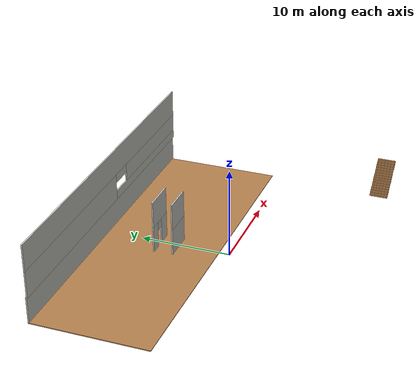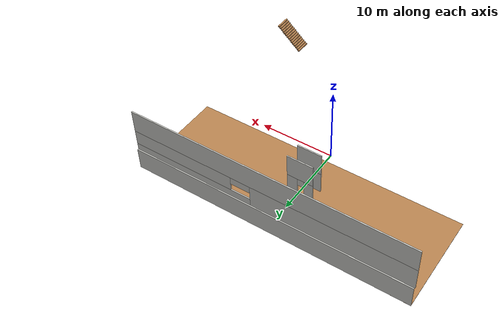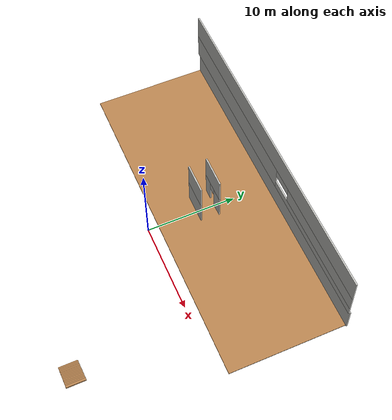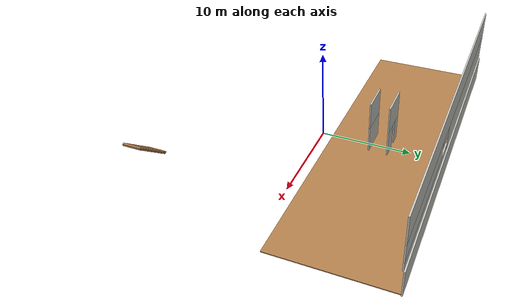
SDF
<sdf version="1.6">
 <model name="add_competition_building">
  <link name="Stairs_21">
   <visual name="Stairs_21_Visual_7">
    <pose>14.0846 -12.9648 4.5 0 -0 1.5708</pose>
    <geometry><box><size>1.95815 0.225003 0.2</size></box></geometry>
    <material>
     <script><uri>file://media/materials/scripts/gazebo.material</uri><name>Gazebo/WoodPallet</name></script>
     <ambient>1 1 1 1</ambient>
     <shader type="pixel"/>
    </material>
    <meta><layer>1</layer></meta>
   </visual>
   <visual name="Stairs_21_Visual_12">
    <pose>15.2096 -12.9648 5.5 0 -0 1.5708</pose>
    <geometry><box><size>1.95815 0.225003 0.2</size></box></geometry>
    <material>
     <script><uri>file://media/materials/scripts/gazebo.material</uri><name>Gazebo/WoodPallet</name></script>
     <ambient>1 1 1 1</ambient>
     <shader type="pixel"/>
    </material>
    <meta><layer>1</layer></meta>
   </visual>
   <visual name="Stairs_21_Visual_14">
    <pose>15.6596 -12.9648 5.9 0 -0 1.5708</pose>
    <geometry><box><size>1.95815 0.225003 0.2</size></box></geometry>
    <material>
     <script><uri>file://media/materials/scripts/gazebo.material</uri><name>Gazebo/WoodPallet</name></script>
     <ambient>1 1 1 1</ambient>
     <shader type="pixel"/>
    </material>
    <meta><layer>1</layer></meta>
   </visual>
   <visual name="Stairs_21_Visual_10">
    <pose>14.7596 -12.9648 5.1 0 -0 1.5708</pose>
    <geometry><box><size>1.95815 0.225003 0.2</size></box></geometry>
    <material>
     <script><uri>file://media/materials/scripts/gazebo.material</uri><name>Gazebo/WoodPallet</name></script>
     <ambient>1 1 1 1</ambient>
     <shader type="pixel"/>
    </material>
    <meta><layer>1</layer></meta>
   </visual>
   <visual name="Stairs_21_Visual_9">
    <pose>14.5346 -12.9648 4.9 0 -0 1.5708</pose>
    <geometry><box><size>1.95815 0.225003 0.2</size></box></geometry>
    <material>
     <script><uri>file://media/materials/scripts/gazebo.material</uri><name>Gazebo/WoodPallet</name></script>
     <ambient>1 1 1 1</ambient>
     <shader type="pixel"/>
    </material>
    <meta><layer>1</layer></meta>
   </visual>
   <visual name="Stairs_21_Visual_3">
    <pose>13.1846 -12.9648 3.7 0 -0 1.5708</pose>
    <geometry><box><size>1.95815 0.225003 0.2</size></box></geometry>
    <material>
     <script><uri>file://media/materials/scripts/gazebo.material</uri><name>Gazebo/WoodPallet</name></script>
     <ambient>1 1 1 1</ambient>
     <shader type="pixel"/>
    </material>
    <meta><layer>1</layer></meta>
   </visual>
   <visual name="Stairs_21_Visual_6">
    <pose>13.8596 -12.9648 4.3 0 -0 1.5708</pose>
    <geometry><box><size>1.95815 0.225003 0.2</size></box></geometry>
    <material>
     <script><uri>file://media/materials/scripts/gazebo.material</uri><name>Gazebo/WoodPallet</name></script>
     <ambient>1 1 1 1</ambient>
     <shader type="pixel"/>
    </material>
    <meta><layer>1</layer></meta>
   </visual>
   <visual name="Stairs_21_Visual_11">
    <pose>14.9846 -12.9648 5.3 0 -0 1.5708</pose>
    <geometry><box><size>1.95815 0.225003 0.2</size></box></geometry>
    <material>
     <script><uri>file://media/materials/scripts/gazebo.material</uri><name>Gazebo/WoodPallet</name></script>
     <ambient>1 1 1 1</ambient>
     <shader type="pixel"/>
    </material>
    <meta><layer>1</layer></meta>
   </visual>
   <visual name="Stairs_21_Visual_13">
    <pose>15.4346 -12.9648 5.7 0 -0 1.5708</pose>
    <geometry><box><size>1.95815 0.225003 0.2</size></box></geometry>
    <material>
     <script><uri>file://media/materials/scripts/gazebo.material</uri><name>Gazebo/WoodPallet</name></script>
     <ambient>1 1 1 1</ambient>
     <shader type="pixel"/>
    </material>
    <meta><layer>1</layer></meta>
   </visual>
   <visual name="Stairs_21_Visual_2">
    <pose>12.9596 -12.9648 3.5 0 -0 1.5708</pose>
    <geometry><box><size>1.95815 0.225003 0.2</size></box></geometry>
    <material>
     <script><uri>file://media/materials/scripts/gazebo.material</uri><name>Gazebo/WoodPallet</name></script>
     <ambient>1 1 1 1</ambient>
     <shader type="pixel"/>
    </material>
    <meta><layer>1</layer></meta>
   </visual>
   <visual name="Stairs_21_Visual_1">
    <pose>12.7346 -12.9648 3.3 0 -0 1.5708</pose>
    <geometry><box><size>1.95815 0.225003 0.2</size></box></geometry>
    <material>
     <script><uri>file://media/materials/scripts/gazebo.material</uri><name>Gazebo/WoodPallet</name></script>
     <ambient>1 1 1 1</ambient>
     <shader type="pixel"/>
    </material>
    <meta><layer>1</layer></meta>
   </visual>
   <visual name="Stairs_21_Visual_5">
    <pose>13.6346 -12.9648 4.1 0 -0 1.5708</pose>
    <geometry><box><size>1.95815 0.225003 0.2</size></box></geometry>
    <material>
     <script><uri>file://media/materials/scripts/gazebo.material</uri><name>Gazebo/WoodPallet</name></script>
     <ambient>1 1 1 1</ambient>
     <shader type="pixel"/>
    </material>
    <meta><layer>1</layer></meta>
   </visual>
   <visual name="Stairs_21_Visual_8">
    <pose>14.3096 -12.9648 4.7 0 -0 1.5708</pose>
    <geometry><box><size>1.95815 0.225003 0.2</size></box></geometry>
    <material>
     <script><uri>file://media/materials/scripts/gazebo.material</uri><name>Gazebo/WoodPallet</name></script>
     <ambient>1 1 1 1</ambient>
     <shader type="pixel"/>
    </material>
    <meta><layer>1</layer></meta>
   </visual>
   <visual name="Stairs_21_Visual_4">
    <pose>13.4096 -12.9648 3.9 0 -0 1.5708</pose>
    <geometry><box><size>1.95815 0.225003 0.2</size></box></geometry>
    <material>
     <script><uri>file://media/materials/scripts/gazebo.material</uri><name>Gazebo/WoodPallet</name></script>
     <ambient>1 1 1 1</ambient>
     <shader type="pixel"/>
    </material>
    <meta><layer>1</layer></meta>
   </visual>
   <visual name="Stairs_21_Visual_0">
    <pose>12.5096 -12.9648 3.1 0 -0 1.5708</pose>
    <geometry><box><size>1.95815 0.225003 0.2</size></box></geometry>
    <material>
     <script><uri>file://media/materials/scripts/gazebo.material</uri><name>Gazebo/WoodPallet</name></script>
     <ambient>1 1 1 1</ambient>
     <shader type="pixel"/>
    </material>
    <meta><layer>1</layer></meta>
   </visual>
   <collision name="Stairs_21_Collision_0">
    <pose>12.5096 -12.9648 3.1 0 -0 1.5708</pose>
    <geometry><box><size>1.95815 0.225003 0.2</size></box></geometry>
    <surface>
     <friction>
      <ode><mu>1</mu><mu2>1</mu2><fdir1>0 0 0</fdir1><slip1>0</slip1><slip2>0</slip2></ode>
      <torsional>
       <coefficient>1</coefficient>
       <patch_radius>0</patch_radius>
       <surface_radius>0</surface_radius>
       <use_patch_radius>1</use_patch_radius>
       <ode><slip>0</slip></ode>
      </torsional>
     </friction>
     <bounce><restitution_coefficient>0</restitution_coefficient><threshold>1e+06</threshold></bounce>
     <contact>
      <collide_without_contact>0</collide_without_contact>
      <collide_without_contact_bitmask>1</collide_without_contact_bitmask>
      <collide_bitmask>1</collide_bitmask>
      <ode>
       <soft_cfm>0</soft_cfm>
       <soft_erp>0.2</soft_erp>
       <kp>1e+13</kp>
       <kd>1</kd>
       <max_vel>0.01</max_vel>
       <min_depth>0</min_depth>
      </ode>
      <bullet>
       <split_impulse>1</split_impulse>
       <split_impulse_penetration_threshold>-0.01</split_impulse_penetration_threshold>
       <soft_cfm>0</soft_cfm>
       <soft_erp>0.2</soft_erp>
       <kp>1e+13</kp>
       <kd>1</kd>
      </bullet>
     </contact>
    </surface>
   </collision>
   <collision name="Stairs_21_Collision_13">
    <pose>15.4346 -12.9648 5.7 0 -0 1.5708</pose>
    <geometry><box><size>1.95815 0.225003 0.2</size></box></geometry>
    <surface>
     <friction>
      <ode><mu>1</mu><mu2>1</mu2><fdir1>0 0 0</fdir1><slip1>0</slip1><slip2>0</slip2></ode>
      <torsional>
       <coefficient>1</coefficient>
       <patch_radius>0</patch_radius>
       <surface_radius>0</surface_radius>
       <use_patch_radius>1</use_patch_radius>
       <ode><slip>0</slip></ode>
      </torsional>
     </friction>
     <bounce><restitution_coefficient>0</restitution_coefficient><threshold>1e+06</threshold></bounce>
     <contact>
      <collide_without_contact>0</collide_without_contact>
      <collide_without_contact_bitmask>1</collide_without_contact_bitmask>
      <collide_bitmask>1</collide_bitmask>
      <ode>
       <soft_cfm>0</soft_cfm>
       <soft_erp>0.2</soft_erp>
       <kp>1e+13</kp>
       <kd>1</kd>
       <max_vel>0.01</max_vel>
       <min_depth>0</min_depth>
      </ode>
      <bullet>
       <split_impulse>1</split_impulse>
       <split_impulse_penetration_threshold>-0.01</split_impulse_penetration_threshold>
       <soft_cfm>0</soft_cfm>
       <soft_erp>0.2</soft_erp>
       <kp>1e+13</kp>
       <kd>1</kd>
      </bullet>
     </contact>
    </surface>
   </collision>
   <collision name="Stairs_21_Collision_9">
    <pose>14.5346 -12.9648 4.9 0 -0 1.5708</pose>
    <geometry><box><size>1.95815 0.225003 0.2</size></box></geometry>
    <surface>
     <friction>
      <ode><mu>1</mu><mu2>1</mu2><fdir1>0 0 0</fdir1><slip1>0</slip1><slip2>0</slip2></ode>
      <torsional>
       <coefficient>1</coefficient>
       <patch_radius>0</patch_radius>
       <surface_radius>0</surface_radius>
       <use_patch_radius>1</use_patch_radius>
       <ode><slip>0</slip></ode>
      </torsional>
     </friction>
     <bounce><restitution_coefficient>0</restitution_coefficient><threshold>1e+06</threshold></bounce>
     <contact>
      <collide_without_contact>0</collide_without_contact>
      <collide_without_contact_bitmask>1</collide_without_contact_bitmask>
      <collide_bitmask>1</collide_bitmask>
      <ode>
       <soft_cfm>0</soft_cfm>
       <soft_erp>0.2</soft_erp>
       <kp>1e+13</kp>
       <kd>1</kd>
       <max_vel>0.01</max_vel>
       <min_depth>0</min_depth>
      </ode>
      <bullet>
       <split_impulse>1</split_impulse>
       <split_impulse_penetration_threshold>-0.01</split_impulse_penetration_threshold>
       <soft_cfm>0</soft_cfm>
       <soft_erp>0.2</soft_erp>
       <kp>1e+13</kp>
       <kd>1</kd>
      </bullet>
     </contact>
    </surface>
   </collision>
   <collision name="Stairs_21_Collision_10">
    <pose>14.7596 -12.9648 5.1 0 -0 1.5708</pose>
    <geometry><box><size>1.95815 0.225003 0.2</size></box></geometry>
    <surface>
     <friction>
      <ode><mu>1</mu><mu2>1</mu2><fdir1>0 0 0</fdir1><slip1>0</slip1><slip2>0</slip2></ode>
      <torsional>
       <coefficient>1</coefficient>
       <patch_radius>0</patch_radius>
       <surface_radius>0</surface_radius>
       <use_patch_radius>1</use_patch_radius>
       <ode><slip>0</slip></ode>
      </torsional>
     </friction>
     <bounce><restitution_coefficient>0</restitution_coefficient><threshold>1e+06</threshold></bounce>
     <contact>
      <collide_without_contact>0</collide_without_contact>
      <collide_without_contact_bitmask>1</collide_without_contact_bitmask>
      <collide_bitmask>1</collide_bitmask>
      <ode>
       <soft_cfm>0</soft_cfm>
       <soft_erp>0.2</soft_erp>
       <kp>1e+13</kp>
       <kd>1</kd>
       <max_vel>0.01</max_vel>
       <min_depth>0</min_depth>
      </ode>
      <bullet>
       <split_impulse>1</split_impulse>
       <split_impulse_penetration_threshold>-0.01</split_impulse_penetration_threshold>
       <soft_cfm>0</soft_cfm>
       <soft_erp>0.2</soft_erp>
       <kp>1e+13</kp>
       <kd>1</kd>
      </bullet>
     </contact>
    </surface>
   </collision>
   <collision name="Stairs_21_Collision_14">
    <pose>15.6596 -12.9648 5.9 0 -0 1.5708</pose>
    <geometry><box><size>1.95815 0.225003 0.2</size></box></geometry>
    <surface>
     <friction>
      <ode><mu>1</mu><mu2>1</mu2><fdir1>0 0 0</fdir1><slip1>0</slip1><slip2>0</slip2></ode>
      <torsional>
       <coefficient>1</coefficient>
       <patch_radius>0</patch_radius>
       <surface_radius>0</surface_radius>
       <use_patch_radius>1</use_patch_radius>
       <ode><slip>0</slip></ode>
      </torsional>
     </friction>
     <bounce><restitution_coefficient>0</restitution_coefficient><threshold>1e+06</threshold></bounce>
     <contact>
      <collide_without_contact>0</collide_without_contact>
      <collide_without_contact_bitmask>1</collide_without_contact_bitmask>
      <collide_bitmask>1</collide_bitmask>
      <ode>
       <soft_cfm>0</soft_cfm>
       <soft_erp>0.2</soft_erp>
       <kp>1e+13</kp>
       <kd>1</kd>
       <max_vel>0.01</max_vel>
       <min_depth>0</min_depth>
      </ode>
      <bullet>
       <split_impulse>1</split_impulse>
       <split_impulse_penetration_threshold>-0.01</split_impulse_penetration_threshold>
       <soft_cfm>0</soft_cfm>
       <soft_erp>0.2</soft_erp>
       <kp>1e+13</kp>
       <kd>1</kd>
      </bullet>
     </contact>
    </surface>
   </collision>
   <collision name="Stairs_21_Collision_12">
    <pose>15.2096 -12.9648 5.5 0 -0 1.5708</pose>
    <geometry><box><size>1.95815 0.225003 0.2</size></box></geometry>
    <surface>
     <friction>
      <ode><mu>1</mu><mu2>1</mu2><fdir1>0 0 0</fdir1><slip1>0</slip1><slip2>0</slip2></ode>
      <torsional>
       <coefficient>1</coefficient>
       <patch_radius>0</patch_radius>
       <surface_radius>0</surface_radius>
       <use_patch_radius>1</use_patch_radius>
       <ode><slip>0</slip></ode>
      </torsional>
     </friction>
     <bounce><restitution_coefficient>0</restitution_coefficient><threshold>1e+06</threshold></bounce>
     <contact>
      <collide_without_contact>0</collide_without_contact>
      <collide_without_contact_bitmask>1</collide_without_contact_bitmask>
      <collide_bitmask>1</collide_bitmask>
      <ode>
       <soft_cfm>0</soft_cfm>
       <soft_erp>0.2</soft_erp>
       <kp>1e+13</kp>
       <kd>1</kd>
       <max_vel>0.01</max_vel>
       <min_depth>0</min_depth>
      </ode>
      <bullet>
       <split_impulse>1</split_impulse>
       <split_impulse_penetration_threshold>-0.01</split_impulse_penetration_threshold>
       <soft_cfm>0</soft_cfm>
       <soft_erp>0.2</soft_erp>
       <kp>1e+13</kp>
       <kd>1</kd>
      </bullet>
     </contact>
    </surface>
   </collision>
   <collision name="Stairs_21_Collision_11">
    <pose>14.9846 -12.9648 5.3 0 -0 1.5708</pose>
    <geometry><box><size>1.95815 0.225003 0.2</size></box></geometry>
    <surface>
     <friction>
      <ode><mu>1</mu><mu2>1</mu2><fdir1>0 0 0</fdir1><slip1>0</slip1><slip2>0</slip2></ode>
      <torsional>
       <coefficient>1</coefficient>
       <patch_radius>0</patch_radius>
       <surface_radius>0</surface_radius>
       <use_patch_radius>1</use_patch_radius>
       <ode><slip>0</slip></ode>
      </torsional>
     </friction>
     <bounce><restitution_coefficient>0</restitution_coefficient><threshold>1e+06</threshold></bounce>
     <contact>
      <collide_without_contact>0</collide_without_contact>
      <collide_without_contact_bitmask>1</collide_without_contact_bitmask>
      <collide_bitmask>1</collide_bitmask>
      <ode>
       <soft_cfm>0</soft_cfm>
       <soft_erp>0.2</soft_erp>
       <kp>1e+13</kp>
       <kd>1</kd>
       <max_vel>0.01</max_vel>
       <min_depth>0</min_depth>
      </ode>
      <bullet>
       <split_impulse>1</split_impulse>
       <split_impulse_penetration_threshold>-0.01</split_impulse_penetration_threshold>
       <soft_cfm>0</soft_cfm>
       <soft_erp>0.2</soft_erp>
       <kp>1e+13</kp>
       <kd>1</kd>
      </bullet>
     </contact>
    </surface>
   </collision>
   <collision name="Stairs_21_Collision_7">
    <pose>14.0846 -12.9648 4.5 0 -0 1.5708</pose>
    <geometry><box><size>1.95815 0.225003 0.2</size></box></geometry>
    <surface>
     <friction>
      <ode><mu>1</mu><mu2>1</mu2><fdir1>0 0 0</fdir1><slip1>0</slip1><slip2>0</slip2></ode>
      <torsional>
       <coefficient>1</coefficient>
       <patch_radius>0</patch_radius>
       <surface_radius>0</surface_radius>
       <use_patch_radius>1</use_patch_radius>
       <ode><slip>0</slip></ode>
      </torsional>
     </friction>
     <bounce><restitution_coefficient>0</restitution_coefficient><threshold>1e+06</threshold></bounce>
     <contact>
      <collide_without_contact>0</collide_without_contact>
      <collide_without_contact_bitmask>1</collide_without_contact_bitmask>
      <collide_bitmask>1</collide_bitmask>
      <ode>
       <soft_cfm>0</soft_cfm>
       <soft_erp>0.2</soft_erp>
       <kp>1e+13</kp>
       <kd>1</kd>
       <max_vel>0.01</max_vel>
       <min_depth>0</min_depth>
      </ode>
      <bullet>
       <split_impulse>1</split_impulse>
       <split_impulse_penetration_threshold>-0.01</split_impulse_penetration_threshold>
       <soft_cfm>0</soft_cfm>
       <soft_erp>0.2</soft_erp>
       <kp>1e+13</kp>
       <kd>1</kd>
      </bullet>
     </contact>
    </surface>
   </collision>
   <collision name="Stairs_21_Collision_8">
    <pose>14.3096 -12.9648 4.7 0 -0 1.5708</pose>
    <geometry><box><size>1.95815 0.225003 0.2</size></box></geometry>
    <surface>
     <friction>
      <ode><mu>1</mu><mu2>1</mu2><fdir1>0 0 0</fdir1><slip1>0</slip1><slip2>0</slip2></ode>
      <torsional>
       <coefficient>1</coefficient>
       <patch_radius>0</patch_radius>
       <surface_radius>0</surface_radius>
       <use_patch_radius>1</use_patch_radius>
       <ode><slip>0</slip></ode>
      </torsional>
     </friction>
     <bounce><restitution_coefficient>0</restitution_coefficient><threshold>1e+06</threshold></bounce>
     <contact>
      <collide_without_contact>0</collide_without_contact>
      <collide_without_contact_bitmask>1</collide_without_contact_bitmask>
      <collide_bitmask>1</collide_bitmask>
      <ode>
       <soft_cfm>0</soft_cfm>
       <soft_erp>0.2</soft_erp>
       <kp>1e+13</kp>
       <kd>1</kd>
       <max_vel>0.01</max_vel>
       <min_depth>0</min_depth>
      </ode>
      <bullet>
       <split_impulse>1</split_impulse>
       <split_impulse_penetration_threshold>-0.01</split_impulse_penetration_threshold>
       <soft_cfm>0</soft_cfm>
       <soft_erp>0.2</soft_erp>
       <kp>1e+13</kp>
       <kd>1</kd>
      </bullet>
     </contact>
    </surface>
   </collision>
   <collision name="Stairs_21_Collision_2">
    <pose>12.9596 -12.9648 3.5 0 -0 1.5708</pose>
    <geometry><box><size>1.95815 0.225003 0.2</size></box></geometry>
    <surface>
     <friction>
      <ode><mu>1</mu><mu2>1</mu2><fdir1>0 0 0</fdir1><slip1>0</slip1><slip2>0</slip2></ode>
      <torsional>
       <coefficient>1</coefficient>
       <patch_radius>0</patch_radius>
       <surface_radius>0</surface_radius>
       <use_patch_radius>1</use_patch_radius>
       <ode><slip>0</slip></ode>
      </torsional>
     </friction>
     <bounce><restitution_coefficient>0</restitution_coefficient><threshold>1e+06</threshold></bounce>
     <contact>
      <collide_without_contact>0</collide_without_contact>
      <collide_without_contact_bitmask>1</collide_without_contact_bitmask>
      <collide_bitmask>1</collide_bitmask>
      <ode>
       <soft_cfm>0</soft_cfm>
       <soft_erp>0.2</soft_erp>
       <kp>1e+13</kp>
       <kd>1</kd>
       <max_vel>0.01</max_vel>
       <min_depth>0</min_depth>
      </ode>
      <bullet>
       <split_impulse>1</split_impulse>
       <split_impulse_penetration_threshold>-0.01</split_impulse_penetration_threshold>
       <soft_cfm>0</soft_cfm>
       <soft_erp>0.2</soft_erp>
       <kp>1e+13</kp>
       <kd>1</kd>
      </bullet>
     </contact>
    </surface>
   </collision>
   <collision name="Stairs_21_Collision_3">
    <pose>13.1846 -12.9648 3.7 0 -0 1.5708</pose>
    <geometry><box><size>1.95815 0.225003 0.2</size></box></geometry>
    <surface>
     <friction>
      <ode><mu>1</mu><mu2>1</mu2><fdir1>0 0 0</fdir1><slip1>0</slip1><slip2>0</slip2></ode>
      <torsional>
       <coefficient>1</coefficient>
       <patch_radius>0</patch_radius>
       <surface_radius>0</surface_radius>
       <use_patch_radius>1</use_patch_radius>
       <ode><slip>0</slip></ode>
      </torsional>
     </friction>
     <bounce><restitution_coefficient>0</restitution_coefficient><threshold>1e+06</threshold></bounce>
     <contact>
      <collide_without_contact>0</collide_without_contact>
      <collide_without_contact_bitmask>1</collide_without_contact_bitmask>
      <collide_bitmask>1</collide_bitmask>
      <ode>
       <soft_cfm>0</soft_cfm>
       <soft_erp>0.2</soft_erp>
       <kp>1e+13</kp>
       <kd>1</kd>
       <max_vel>0.01</max_vel>
       <min_depth>0</min_depth>
      </ode>
      <bullet>
       <split_impulse>1</split_impulse>
       <split_impulse_penetration_threshold>-0.01</split_impulse_penetration_threshold>
       <soft_cfm>0</soft_cfm>
       <soft_erp>0.2</soft_erp>
       <kp>1e+13</kp>
       <kd>1</kd>
      </bullet>
     </contact>
    </surface>
   </collision>
   <collision name="Stairs_21_Collision_5">
    <pose>13.6346 -12.9648 4.1 0 -0 1.5708</pose>
    <geometry><box><size>1.95815 0.225003 0.2</size></box></geometry>
    <surface>
     <friction>
      <ode><mu>1</mu><mu2>1</mu2><fdir1>0 0 0</fdir1><slip1>0</slip1><slip2>0</slip2></ode>
      <torsional>
       <coefficient>1</coefficient>
       <patch_radius>0</patch_radius>
       <surface_radius>0</surface_radius>
       <use_patch_radius>1</use_patch_radius>
       <ode><slip>0</slip></ode>
      </torsional>
     </friction>
     <bounce><restitution_coefficient>0</restitution_coefficient><threshold>1e+06</threshold></bounce>
     <contact>
      <collide_without_contact>0</collide_without_contact>
      <collide_without_contact_bitmask>1</collide_without_contact_bitmask>
      <collide_bitmask>1</collide_bitmask>
      <ode>
       <soft_cfm>0</soft_cfm>
       <soft_erp>0.2</soft_erp>
       <kp>1e+13</kp>
       <kd>1</kd>
       <max_vel>0.01</max_vel>
       <min_depth>0</min_depth>
      </ode>
      <bullet>
       <split_impulse>1</split_impulse>
       <split_impulse_penetration_threshold>-0.01</split_impulse_penetration_threshold>
       <soft_cfm>0</soft_cfm>
       <soft_erp>0.2</soft_erp>
       <kp>1e+13</kp>
       <kd>1</kd>
      </bullet>
     </contact>
    </surface>
   </collision>
   <collision name="Stairs_21_Collision_4">
    <pose>13.4096 -12.9648 3.9 0 -0 1.5708</pose>
    <geometry><box><size>1.95815 0.225003 0.2</size></box></geometry>
    <surface>
     <friction>
      <ode><mu>1</mu><mu2>1</mu2><fdir1>0 0 0</fdir1><slip1>0</slip1><slip2>0</slip2></ode>
      <torsional>
       <coefficient>1</coefficient>
       <patch_radius>0</patch_radius>
       <surface_radius>0</surface_radius>
       <use_patch_radius>1</use_patch_radius>
       <ode><slip>0</slip></ode>
      </torsional>
     </friction>
     <bounce><restitution_coefficient>0</restitution_coefficient><threshold>1e+06</threshold></bounce>
     <contact>
      <collide_without_contact>0</collide_without_contact>
      <collide_without_contact_bitmask>1</collide_without_contact_bitmask>
      <collide_bitmask>1</collide_bitmask>
      <ode>
       <soft_cfm>0</soft_cfm>
       <soft_erp>0.2</soft_erp>
       <kp>1e+13</kp>
       <kd>1</kd>
       <max_vel>0.01</max_vel>
       <min_depth>0</min_depth>
      </ode>
      <bullet>
       <split_impulse>1</split_impulse>
       <split_impulse_penetration_threshold>-0.01</split_impulse_penetration_threshold>
       <soft_cfm>0</soft_cfm>
       <soft_erp>0.2</soft_erp>
       <kp>1e+13</kp>
       <kd>1</kd>
      </bullet>
     </contact>
    </surface>
   </collision>
   <collision name="Stairs_21_Collision_1">
    <pose>12.7346 -12.9648 3.3 0 -0 1.5708</pose>
    <geometry><box><size>1.95815 0.225003 0.2</size></box></geometry>
    <surface>
     <friction>
      <ode><mu>1</mu><mu2>1</mu2><fdir1>0 0 0</fdir1><slip1>0</slip1><slip2>0</slip2></ode>
      <torsional>
       <coefficient>1</coefficient>
       <patch_radius>0</patch_radius>
       <surface_radius>0</surface_radius>
       <use_patch_radius>1</use_patch_radius>
       <ode><slip>0</slip></ode>
      </torsional>
     </friction>
     <bounce><restitution_coefficient>0</restitution_coefficient><threshold>1e+06</threshold></bounce>
     <contact>
      <collide_without_contact>0</collide_without_contact>
      <collide_without_contact_bitmask>1</collide_without_contact_bitmask>
      <collide_bitmask>1</collide_bitmask>
      <ode>
       <soft_cfm>0</soft_cfm>
       <soft_erp>0.2</soft_erp>
       <kp>1e+13</kp>
       <kd>1</kd>
       <max_vel>0.01</max_vel>
       <min_depth>0</min_depth>
      </ode>
      <bullet>
       <split_impulse>1</split_impulse>
       <split_impulse_penetration_threshold>-0.01</split_impulse_penetration_threshold>
       <soft_cfm>0</soft_cfm>
       <soft_erp>0.2</soft_erp>
       <kp>1e+13</kp>
       <kd>1</kd>
      </bullet>
     </contact>
    </surface>
   </collision>
   <collision name="Stairs_21_Collision_6">
    <pose>13.8596 -12.9648 4.3 0 -0 1.5708</pose>
    <geometry><box><size>1.95815 0.225003 0.2</size></box></geometry>
    <surface>
     <friction>
      <ode><mu>1</mu><mu2>1</mu2><fdir1>0 0 0</fdir1><slip1>0</slip1><slip2>0</slip2></ode>
      <torsional>
       <coefficient>1</coefficient>
       <patch_radius>0</patch_radius>
       <surface_radius>0</surface_radius>
       <use_patch_radius>1</use_patch_radius>
       <ode><slip>0</slip></ode>
      </torsional>
     </friction>
     <bounce><restitution_coefficient>0</restitution_coefficient><threshold>1e+06</threshold></bounce>
     <contact>
      <collide_without_contact>0</collide_without_contact>
      <collide_without_contact_bitmask>1</collide_without_contact_bitmask>
      <collide_bitmask>1</collide_bitmask>
      <ode>
       <soft_cfm>0</soft_cfm>
       <soft_erp>0.2</soft_erp>
       <kp>1e+13</kp>
       <kd>1</kd>
       <max_vel>0.01</max_vel>
       <min_depth>0</min_depth>
      </ode>
      <bullet>
       <split_impulse>1</split_impulse>
       <split_impulse_penetration_threshold>-0.01</split_impulse_penetration_threshold>
       <soft_cfm>0</soft_cfm>
       <soft_erp>0.2</soft_erp>
       <kp>1e+13</kp>
       <kd>1</kd>
      </bullet>
     </contact>
    </surface>
   </collision>
  </link>
  <link name="Wall_237">
   <pose>0.073942 14.0798 0 0 -0 0.002842</pose>
   <visual name="Wall_237_Visual">
    <pose>0 0 1.5 0 -0 0</pose>
    <geometry><box><size>36.7501 0.15 3</size></box></geometry>
    <material>
     <script><uri>file://media/materials/scripts/gazebo.material</uri><name>Gazebo/CeilingTiled</name></script>
     <ambient>1 1 1 1</ambient>
     <shader type="pixel"/>
    </material>
    <meta><layer>0</layer></meta>
   </visual>
   <collision name="Wall_237_Collision">
    <pose>0 0 1.5 0 -0 0</pose>
    <geometry><box><size>36.7501 0.15 3</size></box></geometry>
    <surface>
     <friction>
      <ode><mu>1</mu><mu2>1</mu2><fdir1>0 0 0</fdir1><slip1>0</slip1><slip2>0</slip2></ode>
      <torsional>
       <coefficient>1</coefficient>
       <patch_radius>0</patch_radius>
       <surface_radius>0</surface_radius>
       <use_patch_radius>1</use_patch_radius>
       <ode><slip>0</slip></ode>
      </torsional>
     </friction>
     <bounce><restitution_coefficient>0</restitution_coefficient><threshold>1e+06</threshold></bounce>
     <contact>
      <collide_without_contact>0</collide_without_contact>
      <collide_without_contact_bitmask>1</collide_without_contact_bitmask>
      <collide_bitmask>1</collide_bitmask>
      <ode>
       <soft_cfm>0</soft_cfm>
       <soft_erp>0.2</soft_erp>
       <kp>1e+13</kp>
       <kd>1</kd>
       <max_vel>0.01</max_vel>
       <min_depth>0</min_depth>
      </ode>
      <bullet>
       <split_impulse>1</split_impulse>
       <split_impulse_penetration_threshold>-0.01</split_impulse_penetration_threshold>
       <soft_cfm>0</soft_cfm>
       <soft_erp>0.2</soft_erp>
       <kp>1e+13</kp>
       <kd>1</kd>
      </bullet>
     </contact>
    </surface>
   </collision>
  </link>
  <link name="Wall_257">
   <pose>-0.433001 5.6945 0 0 -0 3.14159</pose>
   <visual name="Wall_257_Visual">
    <pose>0 0 1.5 0 -0 0</pose>
    <geometry><box><size>3.25 0.15 3</size></box></geometry>
    <material>
     <script><uri>file://media/materials/scripts/gazebo.material</uri><name>Gazebo/CeilingTiled</name></script>
     <ambient>1 1 1 1</ambient>
     <shader type="pixel"/>
    </material>
    <meta><layer>0</layer></meta>
   </visual>
   <collision name="Wall_257_Collision">
    <pose>0 0 1.5 0 -0 0</pose>
    <geometry><box><size>3.25 0.15 3</size></box></geometry>
    <surface>
     <friction>
      <ode><mu>1</mu><mu2>1</mu2><fdir1>0 0 0</fdir1><slip1>0</slip1><slip2>0</slip2></ode>
      <torsional>
       <coefficient>1</coefficient>
       <patch_radius>0</patch_radius>
       <surface_radius>0</surface_radius>
       <use_patch_radius>1</use_patch_radius>
       <ode><slip>0</slip></ode>
      </torsional>
     </friction>
     <bounce><restitution_coefficient>0</restitution_coefficient><threshold>1e+06</threshold></bounce>
     <contact>
      <collide_without_contact>0</collide_without_contact>
      <collide_without_contact_bitmask>1</collide_without_contact_bitmask>
      <collide_bitmask>1</collide_bitmask>
      <ode>
       <soft_cfm>0</soft_cfm>
       <soft_erp>0.2</soft_erp>
       <kp>1e+13</kp>
       <kd>1</kd>
       <max_vel>0.01</max_vel>
       <min_depth>0</min_depth>
      </ode>
      <bullet>
       <split_impulse>1</split_impulse>
       <split_impulse_penetration_threshold>-0.01</split_impulse_penetration_threshold>
       <soft_cfm>0</soft_cfm>
       <soft_erp>0.2</soft_erp>
       <kp>1e+13</kp>
       <kd>1</kd>
      </bullet>
     </contact>
    </surface>
   </collision>
  </link>
  <link name="Wall_259">
   <pose>-0.479001 7.7685 0 0 -0 3.14159</pose>
   <visual name="Wall_259_Visual_0">
    <pose>-1.03993 0 1.5 0 -0 0</pose>
    <geometry><box><size>1.42013 0.15 3</size></box></geometry>
    <material>
     <script><uri>file://media/materials/scripts/gazebo.material</uri><name>Gazebo/CeilingTiled</name></script>
     <ambient>1 1 1 1</ambient>
     <shader type="pixel"/>
    </material>
    <meta><layer>0</layer></meta>
   </visual>
   <visual name="Wall_259_Visual_1">
    <pose>1.16007 0 1.5 0 -0 0</pose>
    <geometry><box><size>1.17987 0.15 3</size></box></geometry>
    <material>
     <script><uri>file://media/materials/scripts/gazebo.material</uri><name>Gazebo/CeilingTiled</name></script>
     <ambient>1 1 1 1</ambient>
     <shader type="pixel"/>
    </material>
    <meta><layer>0</layer></meta>
   </visual>
   <visual name="Wall_259_Visual_2">
    <pose>0.120132 0 2.5 0 -0 0</pose>
    <geometry><box><size>0.9 0.15 1</size></box></geometry>
    <material>
     <script><uri>file://media/materials/scripts/gazebo.material</uri><name>Gazebo/CeilingTiled</name></script>
     <ambient>1 1 1 1</ambient>
     <shader type="pixel"/>
    </material>
    <meta><layer>0</layer></meta>
   </visual>
   <collision name="Wall_259_Collision_1">
    <pose>1.16007 0 1.5 0 -0 0</pose>
    <geometry><box><size>1.17987 0.15 3</size></box></geometry>
    <surface>
     <friction>
      <ode><mu>1</mu><mu2>1</mu2><fdir1>0 0 0</fdir1><slip1>0</slip1><slip2>0</slip2></ode>
      <torsional>
       <coefficient>1</coefficient>
       <patch_radius>0</patch_radius>
       <surface_radius>0</surface_radius>
       <use_patch_radius>1</use_patch_radius>
       <ode><slip>0</slip></ode>
      </torsional>
     </friction>
     <bounce><restitution_coefficient>0</restitution_coefficient><threshold>1e+06</threshold></bounce>
     <contact>
      <collide_without_contact>0</collide_without_contact>
      <collide_without_contact_bitmask>1</collide_without_contact_bitmask>
      <collide_bitmask>1</collide_bitmask>
      <ode>
       <soft_cfm>0</soft_cfm>
       <soft_erp>0.2</soft_erp>
       <kp>1e+13</kp>
       <kd>1</kd>
       <max_vel>0.01</max_vel>
       <min_depth>0</min_depth>
      </ode>
      <bullet>
       <split_impulse>1</split_impulse>
       <split_impulse_penetration_threshold>-0.01</split_impulse_penetration_threshold>
       <soft_cfm>0</soft_cfm>
       <soft_erp>0.2</soft_erp>
       <kp>1e+13</kp>
       <kd>1</kd>
      </bullet>
     </contact>
    </surface>
   </collision>
   <collision name="Wall_259_Collision_0">
    <pose>-1.03993 0 1.5 0 -0 0</pose>
    <geometry><box><size>1.42013 0.15 3</size></box></geometry>
    <surface>
     <friction>
      <ode><mu>1</mu><mu2>1</mu2><fdir1>0 0 0</fdir1><slip1>0</slip1><slip2>0</slip2></ode>
      <torsional>
       <coefficient>1</coefficient>
       <patch_radius>0</patch_radius>
       <surface_radius>0</surface_radius>
       <use_patch_radius>1</use_patch_radius>
       <ode><slip>0</slip></ode>
      </torsional>
     </friction>
     <bounce><restitution_coefficient>0</restitution_coefficient><threshold>1e+06</threshold></bounce>
     <contact>
      <collide_without_contact>0</collide_without_contact>
      <collide_without_contact_bitmask>1</collide_without_contact_bitmask>
      <collide_bitmask>1</collide_bitmask>
      <ode>
       <soft_cfm>0</soft_cfm>
       <soft_erp>0.2</soft_erp>
       <kp>1e+13</kp>
       <kd>1</kd>
       <max_vel>0.01</max_vel>
       <min_depth>0</min_depth>
      </ode>
      <bullet>
       <split_impulse>1</split_impulse>
       <split_impulse_penetration_threshold>-0.01</split_impulse_penetration_threshold>
       <soft_cfm>0</soft_cfm>
       <soft_erp>0.2</soft_erp>
       <kp>1e+13</kp>
       <kd>1</kd>
      </bullet>
     </contact>
    </surface>
   </collision>
   <collision name="Wall_259_Collision_2">
    <pose>0.120132 0 2.5 0 -0 0</pose>
    <geometry><box><size>0.9 0.15 1</size></box></geometry>
    <surface>
     <friction>
      <ode><mu>1</mu><mu2>1</mu2><fdir1>0 0 0</fdir1><slip1>0</slip1><slip2>0</slip2></ode>
      <torsional>
       <coefficient>1</coefficient>
       <patch_radius>0</patch_radius>
       <surface_radius>0</surface_radius>
       <use_patch_radius>1</use_patch_radius>
       <ode><slip>0</slip></ode>
      </torsional>
     </friction>
     <bounce><restitution_coefficient>0</restitution_coefficient><threshold>1e+06</threshold></bounce>
     <contact>
      <collide_without_contact>0</collide_without_contact>
      <collide_without_contact_bitmask>1</collide_without_contact_bitmask>
      <collide_bitmask>1</collide_bitmask>
      <ode>
       <soft_cfm>0</soft_cfm>
       <soft_erp>0.2</soft_erp>
       <kp>1e+13</kp>
       <kd>1</kd>
       <max_vel>0.01</max_vel>
       <min_depth>0</min_depth>
      </ode>
      <bullet>
       <split_impulse>1</split_impulse>
       <split_impulse_penetration_threshold>-0.01</split_impulse_penetration_threshold>
       <soft_cfm>0</soft_cfm>
       <soft_erp>0.2</soft_erp>
       <kp>1e+13</kp>
       <kd>1</kd>
      </bullet>
     </contact>
    </surface>
   </collision>
  </link>
  <link name="Wall_277">
   <pose>-1e-06 13.9345 3 0 -0 0.002842</pose>
   <visual name="Wall_277_Visual_2">
    <pose>11.5277 0 2 0 -0 0</pose>
    <geometry><box><size>13.6948 0.15 2</size></box></geometry>
    <material>
     <script><uri>file://media/materials/scripts/gazebo.material</uri><name>Gazebo/CeilingTiled</name></script>
     <ambient>1 1 1 1</ambient>
     <shader type="pixel"/>
    </material>
    <meta><layer>1</layer></meta>
   </visual>
   <visual name="Wall_277_Visual_3">
    <pose>3.3848 0 2.5 0 -0 0</pose>
    <geometry><box><size>2.59092 0.15 1</size></box></geometry>
    <material>
     <script><uri>file://media/materials/scripts/gazebo.material</uri><name>Gazebo/CeilingTiled</name></script>
     <ambient>1 1 1 1</ambient>
     <shader type="pixel"/>
    </material>
    <meta><layer>1</layer></meta>
   </visual>
   <visual name="Wall_277_Visual_0">
    <pose>-8.14287 0 1.5 0 -0 0</pose>
    <geometry><box><size>20.4644 0.15 3</size></box></geometry>
    <material>
     <script><uri>file://media/materials/scripts/gazebo.material</uri><name>Gazebo/CeilingTiled</name></script>
     <ambient>1 1 1 1</ambient>
     <shader type="pixel"/>
    </material>
    <meta><layer>1</layer></meta>
   </visual>
   <visual name="Wall_277_Visual_1">
    <pose>10.2322 0 0.5 0 -0 0</pose>
    <geometry><box><size>16.2857 0.15 1</size></box></geometry>
    <material>
     <script><uri>file://media/materials/scripts/gazebo.material</uri><name>Gazebo/CeilingTiled</name></script>
     <ambient>1 1 1 1</ambient>
     <shader type="pixel"/>
    </material>
    <meta><layer>1</layer></meta>
   </visual>
   <collision name="Wall_277_Collision_2">
    <pose>11.5277 0 2 0 -0 0</pose>
    <geometry><box><size>13.6948 0.15 2</size></box></geometry>
    <surface>
     <friction>
      <ode><mu>1</mu><mu2>1</mu2><fdir1>0 0 0</fdir1><slip1>0</slip1><slip2>0</slip2></ode>
      <torsional>
       <coefficient>1</coefficient>
       <patch_radius>0</patch_radius>
       <surface_radius>0</surface_radius>
       <use_patch_radius>1</use_patch_radius>
       <ode><slip>0</slip></ode>
      </torsional>
     </friction>
     <bounce><restitution_coefficient>0</restitution_coefficient><threshold>1e+06</threshold></bounce>
     <contact>
      <collide_without_contact>0</collide_without_contact>
      <collide_without_contact_bitmask>1</collide_without_contact_bitmask>
      <collide_bitmask>1</collide_bitmask>
      <ode>
       <soft_cfm>0</soft_cfm>
       <soft_erp>0.2</soft_erp>
       <kp>1e+13</kp>
       <kd>1</kd>
       <max_vel>0.01</max_vel>
       <min_depth>0</min_depth>
      </ode>
      <bullet>
       <split_impulse>1</split_impulse>
       <split_impulse_penetration_threshold>-0.01</split_impulse_penetration_threshold>
       <soft_cfm>0</soft_cfm>
       <soft_erp>0.2</soft_erp>
       <kp>1e+13</kp>
       <kd>1</kd>
      </bullet>
     </contact>
    </surface>
   </collision>
   <collision name="Wall_277_Collision_1">
    <pose>10.2322 0 0.5 0 -0 0</pose>
    <geometry><box><size>16.2857 0.15 1</size></box></geometry>
    <surface>
     <friction>
      <ode><mu>1</mu><mu2>1</mu2><fdir1>0 0 0</fdir1><slip1>0</slip1><slip2>0</slip2></ode>
      <torsional>
       <coefficient>1</coefficient>
       <patch_radius>0</patch_radius>
       <surface_radius>0</surface_radius>
       <use_patch_radius>1</use_patch_radius>
       <ode><slip>0</slip></ode>
      </torsional>
     </friction>
     <bounce><restitution_coefficient>0</restitution_coefficient><threshold>1e+06</threshold></bounce>
     <contact>
      <collide_without_contact>0</collide_without_contact>
      <collide_without_contact_bitmask>1</collide_without_contact_bitmask>
      <collide_bitmask>1</collide_bitmask>
      <ode>
       <soft_cfm>0</soft_cfm>
       <soft_erp>0.2</soft_erp>
       <kp>1e+13</kp>
       <kd>1</kd>
       <max_vel>0.01</max_vel>
       <min_depth>0</min_depth>
      </ode>
      <bullet>
       <split_impulse>1</split_impulse>
       <split_impulse_penetration_threshold>-0.01</split_impulse_penetration_threshold>
       <soft_cfm>0</soft_cfm>
       <soft_erp>0.2</soft_erp>
       <kp>1e+13</kp>
       <kd>1</kd>
      </bullet>
     </contact>
    </surface>
   </collision>
   <collision name="Wall_277_Collision_3">
    <pose>3.3848 0 2.5 0 -0 0</pose>
    <geometry><box><size>2.59092 0.15 1</size></box></geometry>
    <surface>
     <friction>
      <ode><mu>1</mu><mu2>1</mu2><fdir1>0 0 0</fdir1><slip1>0</slip1><slip2>0</slip2></ode>
      <torsional>
       <coefficient>1</coefficient>
       <patch_radius>0</patch_radius>
       <surface_radius>0</surface_radius>
       <use_patch_radius>1</use_patch_radius>
       <ode><slip>0</slip></ode>
      </torsional>
     </friction>
     <bounce><restitution_coefficient>0</restitution_coefficient><threshold>1e+06</threshold></bounce>
     <contact>
      <collide_without_contact>0</collide_without_contact>
      <collide_without_contact_bitmask>1</collide_without_contact_bitmask>
      <collide_bitmask>1</collide_bitmask>
      <ode>
       <soft_cfm>0</soft_cfm>
       <soft_erp>0.2</soft_erp>
       <kp>1e+13</kp>
       <kd>1</kd>
       <max_vel>0.01</max_vel>
       <min_depth>0</min_depth>
      </ode>
      <bullet>
       <split_impulse>1</split_impulse>
       <split_impulse_penetration_threshold>-0.01</split_impulse_penetration_threshold>
       <soft_cfm>0</soft_cfm>
       <soft_erp>0.2</soft_erp>
       <kp>1e+13</kp>
       <kd>1</kd>
      </bullet>
     </contact>
    </surface>
   </collision>
   <collision name="Wall_277_Collision_0">
    <pose>-8.14287 0 1.5 0 -0 0</pose>
    <geometry><box><size>20.4644 0.15 3</size></box></geometry>
    <surface>
     <friction>
      <ode><mu>1</mu><mu2>1</mu2><fdir1>0 0 0</fdir1><slip1>0</slip1><slip2>0</slip2></ode>
      <torsional>
       <coefficient>1</coefficient>
       <patch_radius>0</patch_radius>
       <surface_radius>0</surface_radius>
       <use_patch_radius>1</use_patch_radius>
       <ode><slip>0</slip></ode>
      </torsional>
     </friction>
     <bounce><restitution_coefficient>0</restitution_coefficient><threshold>1e+06</threshold></bounce>
     <contact>
      <collide_without_contact>0</collide_without_contact>
      <collide_without_contact_bitmask>1</collide_without_contact_bitmask>
      <collide_bitmask>1</collide_bitmask>
      <ode>
       <soft_cfm>0</soft_cfm>
       <soft_erp>0.2</soft_erp>
       <kp>1e+13</kp>
       <kd>1</kd>
       <max_vel>0.01</max_vel>
       <min_depth>0</min_depth>
      </ode>
      <bullet>
       <split_impulse>1</split_impulse>
       <split_impulse_penetration_threshold>-0.01</split_impulse_penetration_threshold>
       <soft_cfm>0</soft_cfm>
       <soft_erp>0.2</soft_erp>
       <kp>1e+13</kp>
       <kd>1</kd>
      </bullet>
     </contact>
    </surface>
   </collision>
  </link>
  <link name="Wall_291">
   <pose>-0.433001 5.6945 3 0 -0 3.14159</pose>
   <visual name="Wall_291_Visual">
    <pose>0 0 1.5 0 -0 0</pose>
    <geometry><box><size>3.25 0.15 3</size></box></geometry>
    <material>
     <script><uri>file://media/materials/scripts/gazebo.material</uri><name>Gazebo/CeilingTiled</name></script>
     <ambient>1 1 1 1</ambient>
     <shader type="pixel"/>
    </material>
    <meta><layer>1</layer></meta>
   </visual>
   <collision name="Wall_291_Collision">
    <pose>0 0 1.5 0 -0 0</pose>
    <geometry><box><size>3.25 0.15 3</size></box></geometry>
    <surface>
     <friction>
      <ode><mu>1</mu><mu2>1</mu2><fdir1>0 0 0</fdir1><slip1>0</slip1><slip2>0</slip2></ode>
      <torsional>
       <coefficient>1</coefficient>
       <patch_radius>0</patch_radius>
       <surface_radius>0</surface_radius>
       <use_patch_radius>1</use_patch_radius>
       <ode><slip>0</slip></ode>
      </torsional>
     </friction>
     <bounce><restitution_coefficient>0</restitution_coefficient><threshold>1e+06</threshold></bounce>
     <contact>
      <collide_without_contact>0</collide_without_contact>
      <collide_without_contact_bitmask>1</collide_without_contact_bitmask>
      <collide_bitmask>1</collide_bitmask>
      <ode>
       <soft_cfm>0</soft_cfm>
       <soft_erp>0.2</soft_erp>
       <kp>1e+13</kp>
       <kd>1</kd>
       <max_vel>0.01</max_vel>
       <min_depth>0</min_depth>
      </ode>
      <bullet>
       <split_impulse>1</split_impulse>
       <split_impulse_penetration_threshold>-0.01</split_impulse_penetration_threshold>
       <soft_cfm>0</soft_cfm>
       <soft_erp>0.2</soft_erp>
       <kp>1e+13</kp>
       <kd>1</kd>
      </bullet>
     </contact>
    </surface>
   </collision>
  </link>
  <link name="Wall_292">
   <pose>-0.479001 7.7685 3 0 -0 3.14159</pose>
   <visual name="Wall_292_Visual">
    <pose>0 0 1.5 0 -0 0</pose>
    <geometry><box><size>3.5 0.15 3</size></box></geometry>
    <material>
     <script><uri>file://media/materials/scripts/gazebo.material</uri><name>Gazebo/CeilingTiled</name></script>
     <ambient>1 1 1 1</ambient>
     <shader type="pixel"/>
    </material>
    <meta><layer>1</layer></meta>
   </visual>
   <collision name="Wall_292_Collision">
    <pose>0 0 1.5 0 -0 0</pose>
    <geometry><box><size>3.5 0.15 3</size></box></geometry>
    <surface>
     <friction>
      <ode><mu>1</mu><mu2>1</mu2><fdir1>0 0 0</fdir1><slip1>0</slip1><slip2>0</slip2></ode>
      <torsional>
       <coefficient>1</coefficient>
       <patch_radius>0</patch_radius>
       <surface_radius>0</surface_radius>
       <use_patch_radius>1</use_patch_radius>
       <ode><slip>0</slip></ode>
      </torsional>
     </friction>
     <bounce><restitution_coefficient>0</restitution_coefficient><threshold>1e+06</threshold></bounce>
     <contact>
      <collide_without_contact>0</collide_without_contact>
      <collide_without_contact_bitmask>1</collide_without_contact_bitmask>
      <collide_bitmask>1</collide_bitmask>
      <ode>
       <soft_cfm>0</soft_cfm>
       <soft_erp>0.2</soft_erp>
       <kp>1e+13</kp>
       <kd>1</kd>
       <max_vel>0.01</max_vel>
       <min_depth>0</min_depth>
      </ode>
      <bullet>
       <split_impulse>1</split_impulse>
       <split_impulse_penetration_threshold>-0.01</split_impulse_penetration_threshold>
       <soft_cfm>0</soft_cfm>
       <soft_erp>0.2</soft_erp>
       <kp>1e+13</kp>
       <kd>1</kd>
      </bullet>
     </contact>
    </surface>
   </collision>
  </link>
  <link name="Wall_332">
   <pose>-1e-06 13.9345 6 0 -0 0.002842</pose>
   <visual name="Wall_332_Visual">
    <pose>0 0 1.5 0 -0 0</pose>
    <geometry><box><size>36.7501 0.15 3</size></box></geometry>
    <material>
     <script><uri>file://media/materials/scripts/gazebo.material</uri><name>Gazebo/CeilingTiled</name></script>
     <ambient>1 1 1 1</ambient>
     <shader type="pixel"/>
    </material>
    <meta><layer>2</layer></meta>
   </visual>
   <collision name="Wall_332_Collision">
    <pose>0 0 1.5 0 -0 0</pose>
    <geometry><box><size>36.7501 0.15 3</size></box></geometry>
    <surface>
     <friction>
      <ode><mu>1</mu><mu2>1</mu2><fdir1>0 0 0</fdir1><slip1>0</slip1><slip2>0</slip2></ode>
      <torsional>
       <coefficient>1</coefficient>
       <patch_radius>0</patch_radius>
       <surface_radius>0</surface_radius>
       <use_patch_radius>1</use_patch_radius>
       <ode><slip>0</slip></ode>
      </torsional>
     </friction>
     <bounce><restitution_coefficient>0</restitution_coefficient><threshold>1e+06</threshold></bounce>
     <contact>
      <collide_without_contact>0</collide_without_contact>
      <collide_without_contact_bitmask>1</collide_without_contact_bitmask>
      <collide_bitmask>1</collide_bitmask>
      <ode>
       <soft_cfm>0</soft_cfm>
       <soft_erp>0.2</soft_erp>
       <kp>1e+13</kp>
       <kd>1</kd>
       <max_vel>0.01</max_vel>
       <min_depth>0</min_depth>
      </ode>
      <bullet>
       <split_impulse>1</split_impulse>
       <split_impulse_penetration_threshold>-0.01</split_impulse_penetration_threshold>
       <soft_cfm>0</soft_cfm>
       <soft_erp>0.2</soft_erp>
       <kp>1e+13</kp>
       <kd>1</kd>
      </bullet>
     </contact>
    </surface>
   </collision>
  </link>
  <link name="link_4_clone_0">
   <inertial>
    <mass>50.7151</mass>
    <inertia><ixx>705.798</ixx><ixy>0</ixy><ixz>0</ixz><iyy>5665.83</iyy><iyz>0</iyz><izz>6371.53</izz></inertia>
   </inertial>
   <pose>0 7.61508 0 0 -0 0</pose>
   <visual name="visual">
    <geometry><box><size>36.6144 12.9225 0.107361</size></box></geometry>
    <material>
     <lighting>1</lighting>
     <script><uri>file://media/materials/scripts/gazebo.material</uri><name>Gazebo/WoodFloor</name></script>
     <shader type="pixel"><normal_map>__default__</normal_map></shader>
     <ambient>1 1 1 1</ambient>
     <diffuse>1 1 1 1</diffuse>
     <specular>0.01 0.01 0.01 1</specular>
     <emissive>0 0 0 1</emissive>
    </material>
   </visual>
   <collision name="collision">
    <geometry><box><size>36.6144 12.9225 0.107361</size></box></geometry>
    <surface>
     <friction>
      <ode><mu>1</mu><mu2>1</mu2><fdir1>0 0 0</fdir1><slip1>0</slip1><slip2>0</slip2></ode>
      <torsional>
       <coefficient>1</coefficient>
       <patch_radius>0</patch_radius>
       <surface_radius>0</surface_radius>
       <use_patch_radius>1</use_patch_radius>
       <ode><slip>0</slip></ode>
      </torsional>
     </friction>
     <bounce><restitution_coefficient>0</restitution_coefficient><threshold>1e+06</threshold></bounce>
     <contact>
      <collide_without_contact>0</collide_without_contact>
      <collide_without_contact_bitmask>1</collide_without_contact_bitmask>
      <collide_bitmask>1</collide_bitmask>
      <ode>
       <soft_cfm>0</soft_cfm>
       <soft_erp>0.2</soft_erp>
       <kp>1e+13</kp>
       <kd>1</kd>
       <max_vel>0.01</max_vel>
       <min_depth>0</min_depth>
      </ode>
      <bullet>
       <split_impulse>1</split_impulse>
       <split_impulse_penetration_threshold>-0.01</split_impulse_penetration_threshold>
       <soft_cfm>0</soft_cfm>
       <soft_erp>0.2</soft_erp>
       <kp>1e+13</kp>
       <kd>1</kd>
      </bullet>
     </contact>
    </surface>
   </collision>
  </link>
  <static>1</static>
 </model>
</sdf>
